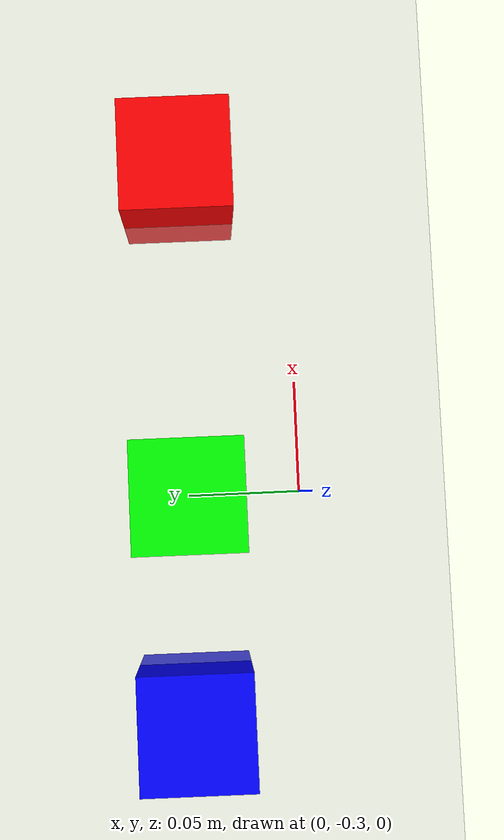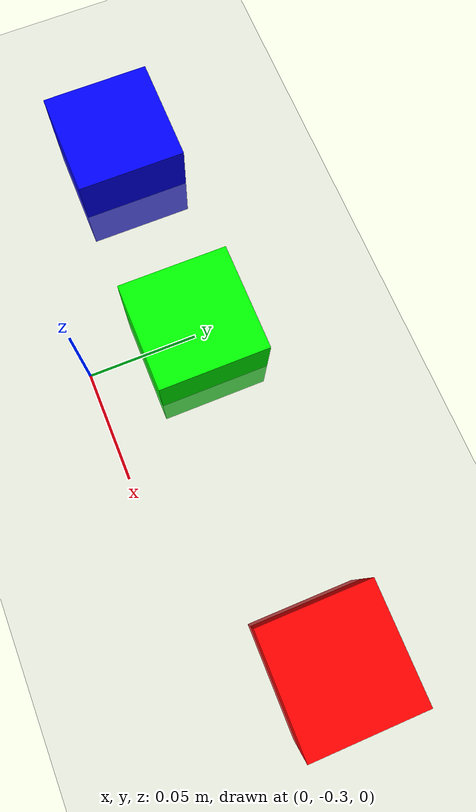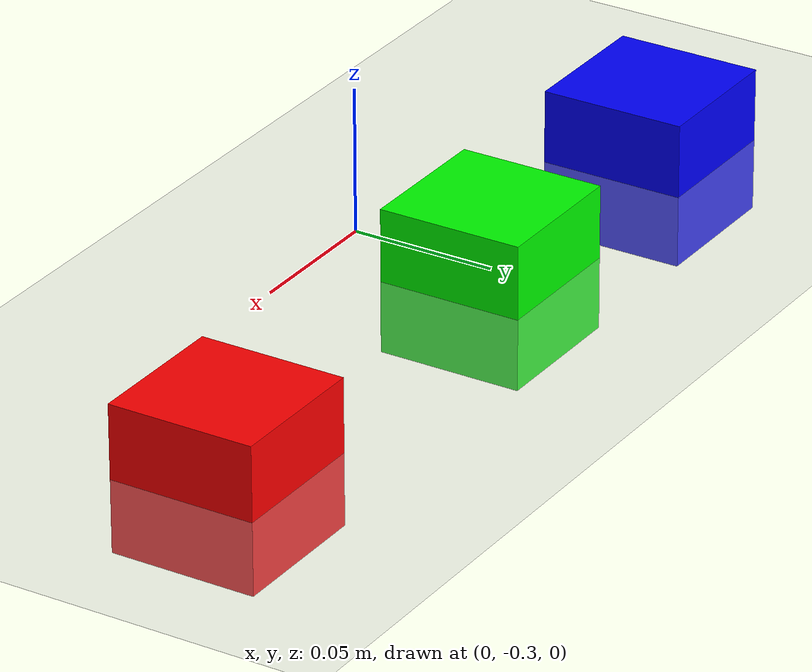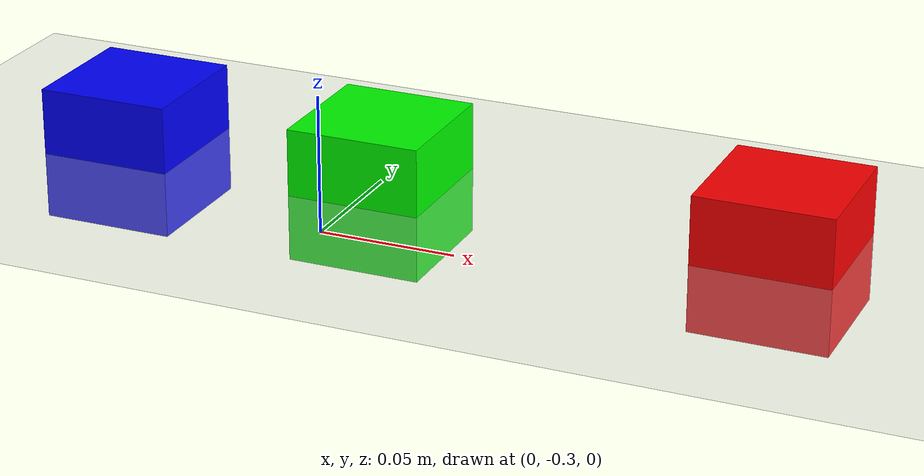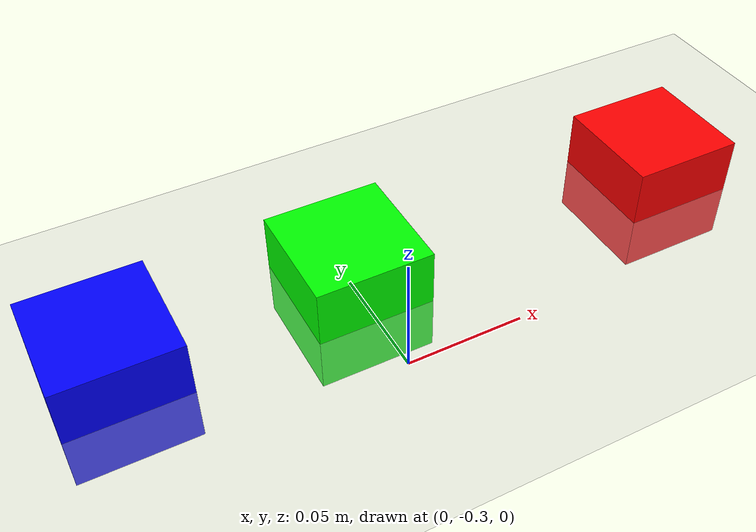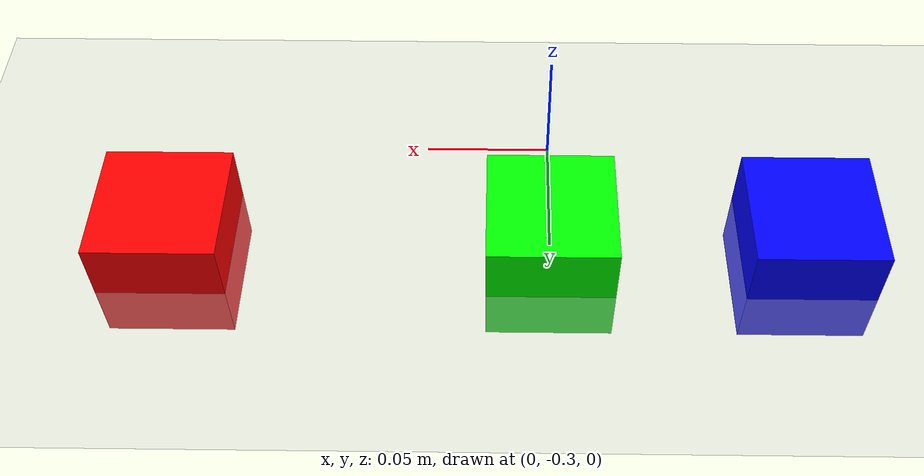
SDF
<sdf version='1.9'>
  <world name='empty'>
    <physics name='1ms' type='ignored'>
      <max_step_size>0.001</max_step_size>
      <real_time_factor>1</real_time_factor>
      <real_time_update_rate>1000</real_time_update_rate>
    </physics>
    <plugin name='gz::sim::systems::Physics' filename='ignition-gazebo-physics-system'/>
    <plugin name='gz::sim::systems::UserCommands' filename='ignition-gazebo-user-commands-system'/>
    <plugin name='gz::sim::systems::SceneBroadcaster' filename='ignition-gazebo-scene-broadcaster-system'/>
    <plugin name='gz::sim::systems::Contact' filename='ignition-gazebo-contact-system'/>
    <gravity>0 0 -9.8</gravity>
    <magnetic_field>6e-06 2.3e-05 -4.2e-05</magnetic_field>
    <atmosphere type='adiabatic'/>
    <scene>
      <ambient>0.4 0.4 0.4 1</ambient>
      <background>0.7 0.7 0.7 1</background>
      <shadows>true</shadows>
    </scene>
    <model name='ground_plane'>
      <static>true</static>
      <link name='link'>
        <collision name='collision'>
          <geometry>
            <plane>
              <normal>0 0 1</normal>
              <size>100 100</size>
            </plane>
          </geometry>
          <surface>
            <friction>
              <ode/>
            </friction>
            <bounce/>
            <contact/>
          </surface>
        </collision>
        <visual name='visual'>
          <geometry>
            <plane>
              <normal>0 0 1</normal>
              <size>100 100</size>
            </plane>
          </geometry>
          <material>
            <ambient>0.8 0.8 0.8 1</ambient>
            <diffuse>0.8 0.8 0.8 1</diffuse>
            <specular>0.8 0.8 0.8 1</specular>
          </material>
        </visual>
        <pose>0 0 0 0 -0 0</pose>
        <inertial>
          <pose>0 0 0 0 -0 0</pose>
          <mass>1</mass>
          <inertia>
            <ixx>1</ixx>
            <ixy>0</ixy>
            <ixz>0</ixz>
            <iyy>1</iyy>
            <iyz>0</iyz>
            <izz>1</izz>
          </inertia>
        </inertial>
        <enable_wind>false</enable_wind>
      </link>
      <pose>0 0 0 0 -0 0</pose>
      <self_collide>false</self_collide>
    </model>

    <!-- Cube 1 (Red) -->
    <model name='cube_1'>
      <pose>0.15 -0.25 0 0 0 0</pose>
      <link name='link'>
        <inertial>
          <mass>0.1</mass>
          <inertia>
            <ixx>0.000416</ixx>
            <ixy>0</ixy>
            <ixz>0</ixz>
            <iyy>0.000416</iyy>
            <iyz>0</iyz>
            <izz>0.000416</izz>
          </inertia>
        </inertial>
        <collision name='collision'>
          <geometry>
            <box>
              <size>0.05 0.05 0.05</size>
            </box>
          </geometry>
        </collision>
        <visual name='visual'>
          <geometry>
            <box>
              <size>0.05 0.05 0.05</size>
            </box>
          </geometry>
          <material>
            <ambient>1 0 0 1</ambient>
            <diffuse>1 0 0 1</diffuse>
            <specular>0.5 0.5 0.5 1</specular>
          </material>
        </visual>
      </link>
    </model>

    <!-- Cube 2 (Green) -->
    <model name='cube_2'>
      <pose>0 -0.25 0 0 0 0</pose>
      <link name='link'>
        <inertial>
          <mass>0.1</mass>
          <inertia>
            <ixx>0.000416</ixx>
            <ixy>0</ixy>
            <ixz>0</ixz>
            <iyy>0.000416</iyy>
            <iyz>0</iyz>
            <izz>0.000416</izz>
          </inertia>
        </inertial>
        <collision name='collision'>
          <geometry>
            <box>
              <size>0.05 0.05 0.05</size>
            </box>
          </geometry>
        </collision>
        <visual name='visual'>
          <geometry>
            <box>
              <size>0.05 0.05 0.05</size>
            </box>
          </geometry>
          <material>
            <ambient>0 1 0 1</ambient>
            <diffuse>0 1 0 1</diffuse>
            <specular>0.5 0.5 0.5 1</specular>
          </material>
        </visual>
      </link>
    </model>

    <!-- Cube 3 (Blue) -->
    <model name='cube_3'>
      <pose>-0.10 -0.25 0 0 0 0</pose>
      <link name='link'>
        <inertial>
          <mass>0.1</mass>
          <inertia>
            <ixx>0.000416</ixx>
            <ixy>0</ixy>
            <ixz>0</ixz>
            <iyy>0.000416</iyy>
            <iyz>0</iyz>
            <izz>0.000416</izz>
          </inertia>
        </inertial>
        <collision name='collision'>
          <geometry>
            <box>
              <size>0.05 0.05 0.05</size>
            </box>
          </geometry>
        </collision>
        <visual name='visual'>
          <geometry>
            <box>
              <size>0.05 0.05 0.05</size>
            </box>
          </geometry>
          <material>
            <ambient>0 0 1 1</ambient>
            <diffuse>0 0 1 1</diffuse>
            <specular>0.5 0.5 0.5 1</specular>
          </material>
        </visual>
      </link>
    </model>

    <light name='sun' type='directional'>
      <pose>0 0 10 0 -0 0</pose>
      <cast_shadows>true</cast_shadows>
      <intensity>1</intensity>
      <direction>-0.5 0.1 -0.9</direction>
      <diffuse>0.8 0.8 0.8 1</diffuse>
      <specular>0.2 0.2 0.2 1</specular>
      <attenuation>
        <range>1000</range>
        <linear>0.01</linear>
        <constant>0.90000000000000002</constant>
        <quadratic>0.001</quadratic>
      </attenuation>
      <spot>
        <inner_angle>0</inner_angle>
        <outer_angle>0</outer_angle>
        <falloff>0</falloff>
      </spot>
    </light>
  </world>
</sdf>
